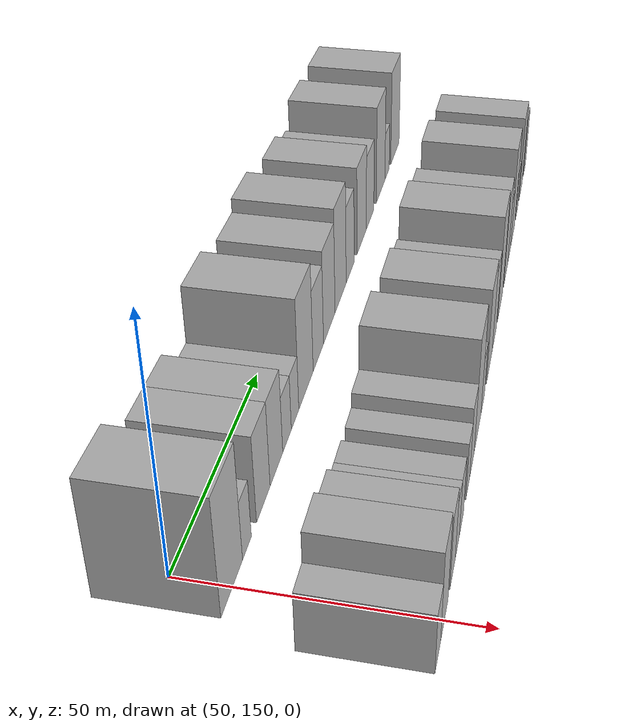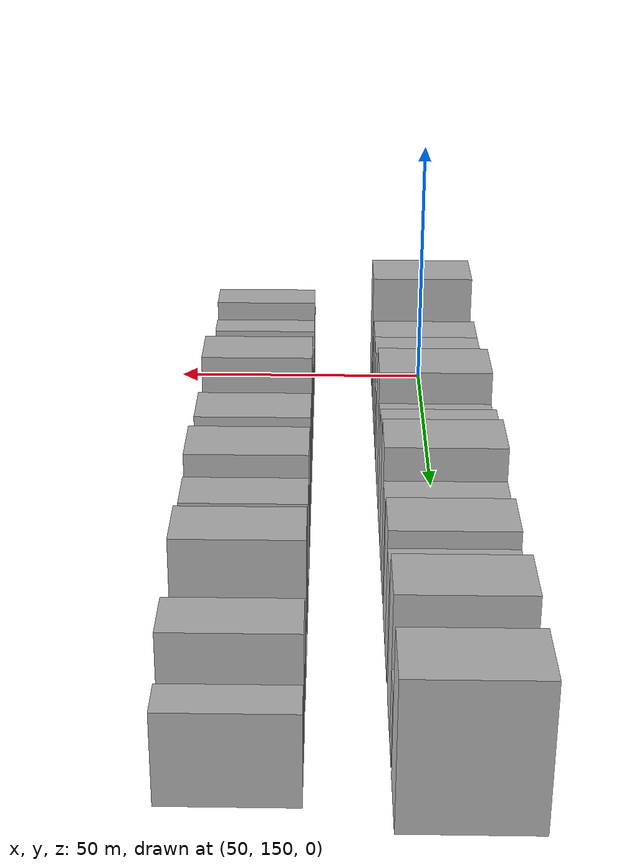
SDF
<sdf version="1.6">
 <world name="default">
  <model name="building_51">
   <static>1</static>
   <pose>50.0000 149.7986 0 0.000000 0.000000 0.000000</pose>
   <link name="link">
    <pose>0 0 12.00 0 0 0</pose>
    <collision name="collision"><geometry><box><size>20.0000 11.4551 24.0000</size></box></geometry></collision>
    <visual name="visual">
     <cast_shadows>0</cast_shadows>
     <geometry><box><size>20.0000 11.4551 24.0000</size></box></geometry>
     <material>
      <script>
       <uri>model://HANNAS_wall/materials/scripts</uri>
       <uri>model://HANNAS_wall/materials/textures</uri>
       <name>vrc/HANNAS_wall</name>
      </script>
     </material>
    </visual>
   </link>
  </model>
  <model name="building_52">
   <static>1</static>
   <pose>50.0000 158.0299 0 0.000000 0.000000 0.000000</pose>
   <link name="link">
    <pose>0 0 6.00 0 0 0</pose>
    <collision name="collision"><geometry><box><size>20.0000 5.0075 12.0000</size></box></geometry></collision>
    <visual name="visual">
     <cast_shadows>0</cast_shadows>
     <geometry><box><size>20.0000 5.0075 12.0000</size></box></geometry>
     <material>
      <script>
       <uri>model://HANNAS_wall/materials/scripts</uri>
       <uri>model://HANNAS_wall/materials/textures</uri>
       <name>vrc/HANNAS_wall</name>
      </script>
     </material>
    </visual>
   </link>
  </model>
  <model name="building_53">
   <static>1</static>
   <pose>50.0000 167.7254 0 0.000000 0.000000 0.000000</pose>
   <link name="link">
    <pose>0 0 9.00 0 0 0</pose>
    <collision name="collision"><geometry><box><size>20.0000 8.3835 18.0000</size></box></geometry></collision>
    <visual name="visual">
     <cast_shadows>0</cast_shadows>
     <geometry><box><size>20.0000 8.3835 18.0000</size></box></geometry>
     <material>
      <script>
       <uri>model://HANNAS_wall/materials/scripts</uri>
       <uri>model://HANNAS_wall/materials/textures</uri>
       <name>vrc/HANNAS_wall</name>
      </script>
     </material>
    </visual>
   </link>
  </model>
  <model name="building_54">
   <static>1</static>
   <pose>50.0000 176.0990 0 0.000000 0.000000 0.000000</pose>
   <link name="link">
    <pose>0 0 9.00 0 0 0</pose>
    <collision name="collision"><geometry><box><size>20.0000 8.3637 18.0000</size></box></geometry></collision>
    <visual name="visual">
     <cast_shadows>0</cast_shadows>
     <geometry><box><size>20.0000 8.3637 18.0000</size></box></geometry>
     <material>
      <script>
       <uri>model://HANNAS_wall/materials/scripts</uri>
       <uri>model://HANNAS_wall/materials/textures</uri>
       <name>vrc/HANNAS_wall</name>
      </script>
     </material>
    </visual>
   </link>
  </model>
  <model name="building_55">
   <static>1</static>
   <pose>50.0000 183.2807 0 0.000000 0.000000 0.000000</pose>
   <link name="link">
    <pose>0 0 6.00 0 0 0</pose>
    <collision name="collision"><geometry><box><size>20.0000 5.9995 12.0000</size></box></geometry></collision>
    <visual name="visual">
     <cast_shadows>0</cast_shadows>
     <geometry><box><size>20.0000 5.9995 12.0000</size></box></geometry>
     <material>
      <script>
       <uri>model://HANNAS_wall/materials/scripts</uri>
       <uri>model://HANNAS_wall/materials/textures</uri>
       <name>vrc/HANNAS_wall</name>
      </script>
     </material>
    </visual>
   </link>
  </model>
  <model name="building_56">
   <static>1</static>
   <pose>50.0000 189.0195 0 0.000000 0.000000 0.000000</pose>
   <link name="link">
    <pose>0 0 6.00 0 0 0</pose>
    <collision name="collision"><geometry><box><size>20.0000 5.4782 12.0000</size></box></geometry></collision>
    <visual name="visual">
     <cast_shadows>0</cast_shadows>
     <geometry><box><size>20.0000 5.4782 12.0000</size></box></geometry>
     <material>
      <script>
       <uri>model://HANNAS_wall/materials/scripts</uri>
       <uri>model://HANNAS_wall/materials/textures</uri>
       <name>vrc/HANNAS_wall</name>
      </script>
     </material>
    </visual>
   </link>
  </model>
  <model name="building_57">
   <static>1</static>
   <pose>50.0000 197.3581 0 0.000000 0.000000 0.000000</pose>
   <link name="link">
    <pose>0 0 12.00 0 0 0</pose>
    <collision name="collision"><geometry><box><size>20.0000 11.1989 24.0000</size></box></geometry></collision>
    <visual name="visual">
     <cast_shadows>0</cast_shadows>
     <geometry><box><size>20.0000 11.1989 24.0000</size></box></geometry>
     <material>
      <script>
       <uri>model://HANNAS_wall/materials/scripts</uri>
       <uri>model://HANNAS_wall/materials/textures</uri>
       <name>vrc/HANNAS_wall</name>
      </script>
     </material>
    </visual>
   </link>
  </model>
  <model name="building_58">
   <static>1</static>
   <pose>50.0000 207.3073 0 0.000000 0.000000 0.000000</pose>
   <link name="link">
    <pose>0 0 9.00 0 0 0</pose>
    <collision name="collision"><geometry><box><size>20.0000 8.6995 18.0000</size></box></geometry></collision>
    <visual name="visual">
     <cast_shadows>0</cast_shadows>
     <geometry><box><size>20.0000 8.6995 18.0000</size></box></geometry>
     <material>
      <script>
       <uri>model://HANNAS_wall/materials/scripts</uri>
       <uri>model://HANNAS_wall/materials/textures</uri>
       <name>vrc/HANNAS_wall</name>
      </script>
     </material>
    </visual>
   </link>
  </model>
  <model name="building_59">
   <static>1</static>
   <pose>50.0000 216.8353 0 0.000000 0.000000 0.000000</pose>
   <link name="link">
    <pose>0 0 10.50 0 0 0</pose>
    <collision name="collision"><geometry><box><size>20.0000 10.3565 21.0000</size></box></geometry></collision>
    <visual name="visual">
     <cast_shadows>0</cast_shadows>
     <geometry><box><size>20.0000 10.3565 21.0000</size></box></geometry>
     <material>
      <script>
       <uri>model://HANNAS_wall/materials/scripts</uri>
       <uri>model://HANNAS_wall/materials/textures</uri>
       <name>vrc/HANNAS_wall</name>
      </script>
     </material>
    </visual>
   </link>
  </model>
  <model name="building_60">
   <static>1</static>
   <pose>50.0000 227.3803 0 0.000000 0.000000 0.000000</pose>
   <link name="link">
    <pose>0 0 12.00 0 0 0</pose>
    <collision name="collision"><geometry><box><size>20.0000 10.7336 24.0000</size></box></geometry></collision>
    <visual name="visual">
     <cast_shadows>0</cast_shadows>
     <geometry><box><size>20.0000 10.7336 24.0000</size></box></geometry>
     <material>
      <script>
       <uri>model://HANNAS_wall/materials/scripts</uri>
       <uri>model://HANNAS_wall/materials/textures</uri>
       <name>vrc/HANNAS_wall</name>
      </script>
     </material>
    </visual>
   </link>
  </model>
  <model name="building_61">
   <static>1</static>
   <pose>50.0000 236.8530 0 0.000000 0.000000 0.000000</pose>
   <link name="link">
    <pose>0 0 9.00 0 0 0</pose>
    <collision name="collision"><geometry><box><size>20.0000 8.2119 18.0000</size></box></geometry></collision>
    <visual name="visual">
     <cast_shadows>0</cast_shadows>
     <geometry><box><size>20.0000 8.2119 18.0000</size></box></geometry>
     <material>
      <script>
       <uri>model://HANNAS_wall/materials/scripts</uri>
       <uri>model://HANNAS_wall/materials/textures</uri>
       <name>vrc/HANNAS_wall</name>
      </script>
     </material>
    </visual>
   </link>
  </model>
  <model name="building_62">
   <static>1</static>
   <pose>50.0000 249.1759 0 0.000000 0.000000 0.000000</pose>
   <link name="link">
    <pose>0 0 10.50 0 0 0</pose>
    <collision name="collision"><geometry><box><size>20.0000 10.4338 21.0000</size></box></geometry></collision>
    <visual name="visual">
     <cast_shadows>0</cast_shadows>
     <geometry><box><size>20.0000 10.4338 21.0000</size></box></geometry>
     <material>
      <script>
       <uri>model://HANNAS_wall/materials/scripts</uri>
       <uri>model://HANNAS_wall/materials/textures</uri>
       <name>vrc/HANNAS_wall</name>
      </script>
     </material>
    </visual>
   </link>
  </model>
  <model name="building_63">
   <static>1</static>
   <pose>50.0000 258.8186 0 0.000000 0.000000 0.000000</pose>
   <link name="link">
    <pose>0 0 9.00 0 0 0</pose>
    <collision name="collision"><geometry><box><size>20.0000 8.8517 18.0000</size></box></geometry></collision>
    <visual name="visual">
     <cast_shadows>0</cast_shadows>
     <geometry><box><size>20.0000 8.8517 18.0000</size></box></geometry>
     <material>
      <script>
       <uri>model://HANNAS_wall/materials/scripts</uri>
       <uri>model://HANNAS_wall/materials/textures</uri>
       <name>vrc/HANNAS_wall</name>
      </script>
     </material>
    </visual>
   </link>
  </model>
  <model name="building_64">
   <static>1</static>
   <pose>50.0000 271.7343 0 0.000000 0.000000 0.000000</pose>
   <link name="link">
    <pose>0 0 12.00 0 0 0</pose>
    <collision name="collision"><geometry><box><size>20.0000 10.9798 24.0000</size></box></geometry></collision>
    <visual name="visual">
     <cast_shadows>0</cast_shadows>
     <geometry><box><size>20.0000 10.9798 24.0000</size></box></geometry>
     <material>
      <script>
       <uri>model://HANNAS_wall/materials/scripts</uri>
       <uri>model://HANNAS_wall/materials/textures</uri>
       <name>vrc/HANNAS_wall</name>
      </script>
     </material>
    </visual>
   </link>
  </model>
  <model name="building_65">
   <static>1</static>
   <pose>50.0000 280.1727 0 0.000000 0.000000 0.000000</pose>
   <link name="link">
    <pose>0 0 6.00 0 0 0</pose>
    <collision name="collision"><geometry><box><size>20.0000 5.8970 12.0000</size></box></geometry></collision>
    <visual name="visual">
     <cast_shadows>0</cast_shadows>
     <geometry><box><size>20.0000 5.8970 12.0000</size></box></geometry>
     <material>
      <script>
       <uri>model://HANNAS_wall/materials/scripts</uri>
       <uri>model://HANNAS_wall/materials/textures</uri>
       <name>vrc/HANNAS_wall</name>
      </script>
     </material>
    </visual>
   </link>
  </model>
  <model name="building_66">
   <static>1</static>
   <pose>50.0000 291.0490 0 0.000000 0.000000 0.000000</pose>
   <link name="link">
    <pose>0 0 12.00 0 0 0</pose>
    <collision name="collision"><geometry><box><size>20.0000 11.8557 24.0000</size></box></geometry></collision>
    <visual name="visual">
     <cast_shadows>0</cast_shadows>
     <geometry><box><size>20.0000 11.8557 24.0000</size></box></geometry>
     <material>
      <script>
       <uri>model://HANNAS_wall/materials/scripts</uri>
       <uri>model://HANNAS_wall/materials/textures</uri>
       <name>vrc/HANNAS_wall</name>
      </script>
     </material>
    </visual>
   </link>
  </model>
  <model name="building_116">
   <static>1</static>
   <pose>82.0000 143.3189 0 0.000000 0.000000 0.000000</pose>
   <link name="link">
    <pose>0 0 6.00 0 0 0</pose>
    <collision name="collision"><geometry><box><size>20.0000 5.5807 12.0000</size></box></geometry></collision>
    <visual name="visual">
     <cast_shadows>0</cast_shadows>
     <geometry><box><size>20.0000 5.5807 12.0000</size></box></geometry>
     <material>
      <script>
       <uri>model://HANNAS_wall/materials/scripts</uri>
       <uri>model://HANNAS_wall/materials/textures</uri>
       <name>vrc/HANNAS_wall</name>
      </script>
     </material>
    </visual>
   </link>
  </model>
  <model name="building_117">
   <static>1</static>
   <pose>82.0000 150.0102 0 0.000000 0.000000 0.000000</pose>
   <link name="link">
    <pose>0 0 9.00 0 0 0</pose>
    <collision name="collision"><geometry><box><size>20.0000 7.8019 18.0000</size></box></geometry></collision>
    <visual name="visual">
     <cast_shadows>0</cast_shadows>
     <geometry><box><size>20.0000 7.8019 18.0000</size></box></geometry>
     <material>
      <script>
       <uri>model://HANNAS_wall/materials/scripts</uri>
       <uri>model://HANNAS_wall/materials/textures</uri>
       <name>vrc/HANNAS_wall</name>
      </script>
     </material>
    </visual>
   </link>
  </model>
  <model name="building_118">
   <static>1</static>
   <pose>82.0000 158.9961 0 0.000000 0.000000 0.000000</pose>
   <link name="link">
    <pose>0 0 7.50 0 0 0</pose>
    <collision name="collision"><geometry><box><size>20.0000 6.1699 15.0000</size></box></geometry></collision>
    <visual name="visual">
     <cast_shadows>0</cast_shadows>
     <geometry><box><size>20.0000 6.1699 15.0000</size></box></geometry>
     <material>
      <script>
       <uri>model://HANNAS_wall/materials/scripts</uri>
       <uri>model://HANNAS_wall/materials/textures</uri>
       <name>vrc/HANNAS_wall</name>
      </script>
     </material>
    </visual>
   </link>
  </model>
  <model name="building_119">
   <static>1</static>
   <pose>82.0000 164.4947 0 0.000000 0.000000 0.000000</pose>
   <link name="link">
    <pose>0 0 6.00 0 0 0</pose>
    <collision name="collision"><geometry><box><size>20.0000 4.8273 12.0000</size></box></geometry></collision>
    <visual name="visual">
     <cast_shadows>0</cast_shadows>
     <geometry><box><size>20.0000 4.8273 12.0000</size></box></geometry>
     <material>
      <script>
       <uri>model://HANNAS_wall/materials/scripts</uri>
       <uri>model://HANNAS_wall/materials/textures</uri>
       <name>vrc/HANNAS_wall</name>
      </script>
     </material>
    </visual>
   </link>
  </model>
  <model name="building_120">
   <static>1</static>
   <pose>82.0000 169.5151 0 0.000000 0.000000 0.000000</pose>
   <link name="link">
    <pose>0 0 6.00 0 0 0</pose>
    <collision name="collision"><geometry><box><size>20.0000 5.2135 12.0000</size></box></geometry></collision>
    <visual name="visual">
     <cast_shadows>0</cast_shadows>
     <geometry><box><size>20.0000 5.2135 12.0000</size></box></geometry>
     <material>
      <script>
       <uri>model://HANNAS_wall/materials/scripts</uri>
       <uri>model://HANNAS_wall/materials/textures</uri>
       <name>vrc/HANNAS_wall</name>
      </script>
     </material>
    </visual>
   </link>
  </model>
  <model name="building_121">
   <static>1</static>
   <pose>82.0000 177.6936 0 0.000000 0.000000 0.000000</pose>
   <link name="link">
    <pose>0 0 6.00 0 0 0</pose>
    <collision name="collision"><geometry><box><size>20.0000 5.1436 12.0000</size></box></geometry></collision>
    <visual name="visual">
     <cast_shadows>0</cast_shadows>
     <geometry><box><size>20.0000 5.1436 12.0000</size></box></geometry>
     <material>
      <script>
       <uri>model://HANNAS_wall/materials/scripts</uri>
       <uri>model://HANNAS_wall/materials/textures</uri>
       <name>vrc/HANNAS_wall</name>
      </script>
     </material>
    </visual>
   </link>
  </model>
  <model name="building_122">
   <static>1</static>
   <pose>82.0000 183.4470 0 0.000000 0.000000 0.000000</pose>
   <link name="link">
    <pose>0 0 7.50 0 0 0</pose>
    <collision name="collision"><geometry><box><size>20.0000 6.3632 15.0000</size></box></geometry></collision>
    <visual name="visual">
     <cast_shadows>0</cast_shadows>
     <geometry><box><size>20.0000 6.3632 15.0000</size></box></geometry>
     <material>
      <script>
       <uri>model://HANNAS_wall/materials/scripts</uri>
       <uri>model://HANNAS_wall/materials/textures</uri>
       <name>vrc/HANNAS_wall</name>
      </script>
     </material>
    </visual>
   </link>
  </model>
  <model name="building_123">
   <static>1</static>
   <pose>82.0000 191.6766 0 0.000000 0.000000 0.000000</pose>
   <link name="link">
    <pose>0 0 12.00 0 0 0</pose>
    <collision name="collision"><geometry><box><size>20.0000 10.0960 24.0000</size></box></geometry></collision>
    <visual name="visual">
     <cast_shadows>0</cast_shadows>
     <geometry><box><size>20.0000 10.0960 24.0000</size></box></geometry>
     <material>
      <script>
       <uri>model://HANNAS_wall/materials/scripts</uri>
       <uri>model://HANNAS_wall/materials/textures</uri>
       <name>vrc/HANNAS_wall</name>
      </script>
     </material>
    </visual>
   </link>
  </model>
  <model name="building_124">
   <static>1</static>
   <pose>82.0000 199.5664 0 0.000000 0.000000 0.000000</pose>
   <link name="link">
    <pose>0 0 6.00 0 0 0</pose>
    <collision name="collision"><geometry><box><size>20.0000 5.6836 12.0000</size></box></geometry></collision>
    <visual name="visual">
     <cast_shadows>0</cast_shadows>
     <geometry><box><size>20.0000 5.6836 12.0000</size></box></geometry>
     <material>
      <script>
       <uri>model://HANNAS_wall/materials/scripts</uri>
       <uri>model://HANNAS_wall/materials/textures</uri>
       <name>vrc/HANNAS_wall</name>
      </script>
     </material>
    </visual>
   </link>
  </model>
  <model name="building_125">
   <static>1</static>
   <pose>82.0000 210.4319 0 0.000000 0.000000 0.000000</pose>
   <link name="link">
    <pose>0 0 10.50 0 0 0</pose>
    <collision name="collision"><geometry><box><size>20.0000 10.0475 21.0000</size></box></geometry></collision>
    <visual name="visual">
     <cast_shadows>0</cast_shadows>
     <geometry><box><size>20.0000 10.0475 21.0000</size></box></geometry>
     <material>
      <script>
       <uri>model://HANNAS_wall/materials/scripts</uri>
       <uri>model://HANNAS_wall/materials/textures</uri>
       <name>vrc/HANNAS_wall</name>
      </script>
     </material>
    </visual>
   </link>
  </model>
  <model name="building_126">
   <static>1</static>
   <pose>82.0000 219.3880 0 0.000000 0.000000 0.000000</pose>
   <link name="link">
    <pose>0 0 9.00 0 0 0</pose>
    <collision name="collision"><geometry><box><size>20.0000 7.8647 18.0000</size></box></geometry></collision>
    <visual name="visual">
     <cast_shadows>0</cast_shadows>
     <geometry><box><size>20.0000 7.8647 18.0000</size></box></geometry>
     <material>
      <script>
       <uri>model://HANNAS_wall/materials/scripts</uri>
       <uri>model://HANNAS_wall/materials/textures</uri>
       <name>vrc/HANNAS_wall</name>
      </script>
     </material>
    </visual>
   </link>
  </model>
  <model name="building_127">
   <static>1</static>
   <pose>82.0000 230.5347 0 0.000000 0.000000 0.000000</pose>
   <link name="link">
    <pose>0 0 12.00 0 0 0</pose>
    <collision name="collision"><geometry><box><size>20.0000 10.4287 24.0000</size></box></geometry></collision>
    <visual name="visual">
     <cast_shadows>0</cast_shadows>
     <geometry><box><size>20.0000 10.4287 24.0000</size></box></geometry>
     <material>
      <script>
       <uri>model://HANNAS_wall/materials/scripts</uri>
       <uri>model://HANNAS_wall/materials/textures</uri>
       <name>vrc/HANNAS_wall</name>
      </script>
     </material>
    </visual>
   </link>
  </model>
  <model name="building_128">
   <static>1</static>
   <pose>82.0000 242.0847 0 0.000000 0.000000 0.000000</pose>
   <link name="link">
    <pose>0 0 10.50 0 0 0</pose>
    <collision name="collision"><geometry><box><size>20.0000 8.6713 21.0000</size></box></geometry></collision>
    <visual name="visual">
     <cast_shadows>0</cast_shadows>
     <geometry><box><size>20.0000 8.6713 21.0000</size></box></geometry>
     <material>
      <script>
       <uri>model://HANNAS_wall/materials/scripts</uri>
       <uri>model://HANNAS_wall/materials/textures</uri>
       <name>vrc/HANNAS_wall</name>
      </script>
     </material>
    </visual>
   </link>
  </model>
  <model name="building_129">
   <static>1</static>
   <pose>82.0000 249.6196 0 0.000000 0.000000 0.000000</pose>
   <link name="link">
    <pose>0 0 7.50 0 0 0</pose>
    <collision name="collision"><geometry><box><size>20.0000 6.3984 15.0000</size></box></geometry></collision>
    <visual name="visual">
     <cast_shadows>0</cast_shadows>
     <geometry><box><size>20.0000 6.3984 15.0000</size></box></geometry>
     <material>
      <script>
       <uri>model://HANNAS_wall/materials/scripts</uri>
       <uri>model://HANNAS_wall/materials/textures</uri>
       <name>vrc/HANNAS_wall</name>
      </script>
     </material>
    </visual>
   </link>
  </model>
  <model name="building_130">
   <static>1</static>
   <pose>82.0000 257.8095 0 0.000000 0.000000 0.000000</pose>
   <link name="link">
    <pose>0 0 12.00 0 0 0</pose>
    <collision name="collision"><geometry><box><size>20.0000 9.9813 24.0000</size></box></geometry></collision>
    <visual name="visual">
     <cast_shadows>0</cast_shadows>
     <geometry><box><size>20.0000 9.9813 24.0000</size></box></geometry>
     <material>
      <script>
       <uri>model://HANNAS_wall/materials/scripts</uri>
       <uri>model://HANNAS_wall/materials/textures</uri>
       <name>vrc/HANNAS_wall</name>
      </script>
     </material>
    </visual>
   </link>
  </model>
  <model name="building_131">
   <static>1</static>
   <pose>82.0000 267.6691 0 0.000000 0.000000 0.000000</pose>
   <link name="link">
    <pose>0 0 6.00 0 0 0</pose>
    <collision name="collision"><geometry><box><size>20.0000 5.7380 12.0000</size></box></geometry></collision>
    <visual name="visual">
     <cast_shadows>0</cast_shadows>
     <geometry><box><size>20.0000 5.7380 12.0000</size></box></geometry>
     <material>
      <script>
       <uri>model://HANNAS_wall/materials/scripts</uri>
       <uri>model://HANNAS_wall/materials/textures</uri>
       <name>vrc/HANNAS_wall</name>
      </script>
     </material>
    </visual>
   </link>
  </model>
  <model name="building_132">
   <static>1</static>
   <pose>82.0000 278.0167 0 0.000000 0.000000 0.000000</pose>
   <link name="link">
    <pose>0 0 10.50 0 0 0</pose>
    <collision name="collision"><geometry><box><size>20.0000 8.9571 21.0000</size></box></geometry></collision>
    <visual name="visual">
     <cast_shadows>0</cast_shadows>
     <geometry><box><size>20.0000 8.9571 21.0000</size></box></geometry>
     <material>
      <script>
       <uri>model://HANNAS_wall/materials/scripts</uri>
       <uri>model://HANNAS_wall/materials/textures</uri>
       <name>vrc/HANNAS_wall</name>
      </script>
     </material>
    </visual>
   </link>
  </model>
  <model name="building_133">
   <static>1</static>
   <pose>82.0000 288.7642 0 0.000000 0.000000 0.000000</pose>
   <link name="link">
    <pose>0 0 7.50 0 0 0</pose>
    <collision name="collision"><geometry><box><size>20.0000 6.5379 15.0000</size></box></geometry></collision>
    <visual name="visual">
     <cast_shadows>0</cast_shadows>
     <geometry><box><size>20.0000 6.5379 15.0000</size></box></geometry>
     <material>
      <script>
       <uri>model://HANNAS_wall/materials/scripts</uri>
       <uri>model://HANNAS_wall/materials/textures</uri>
       <name>vrc/HANNAS_wall</name>
      </script>
     </material>
    </visual>
   </link>
  </model>
 </world>
</sdf>
